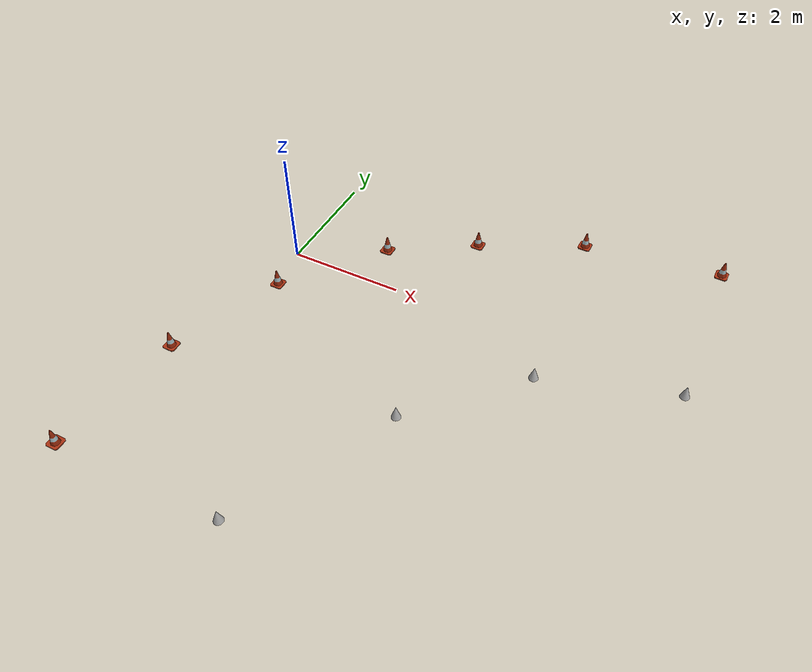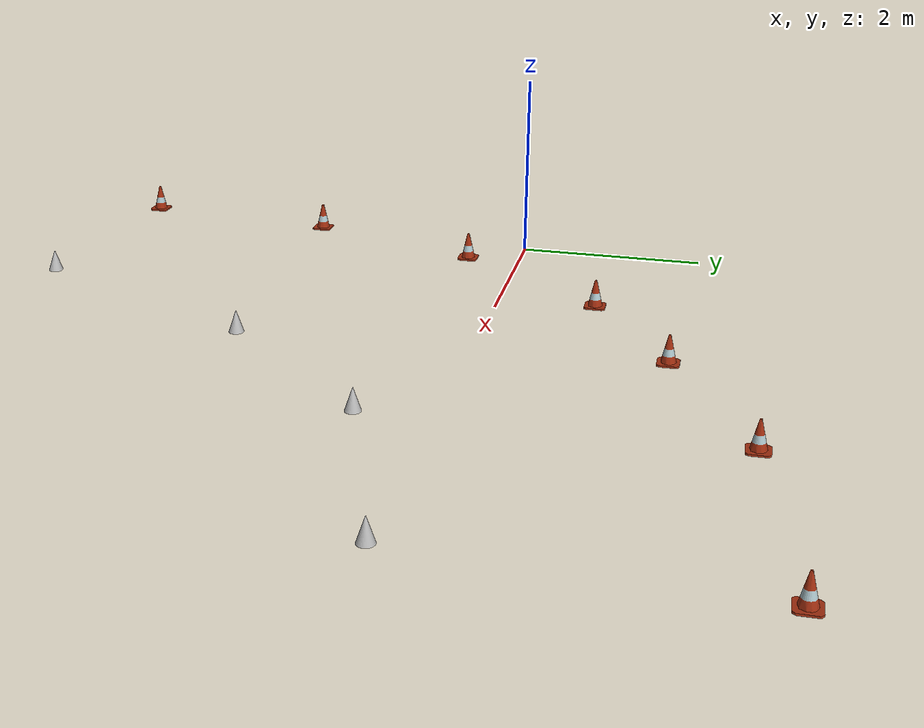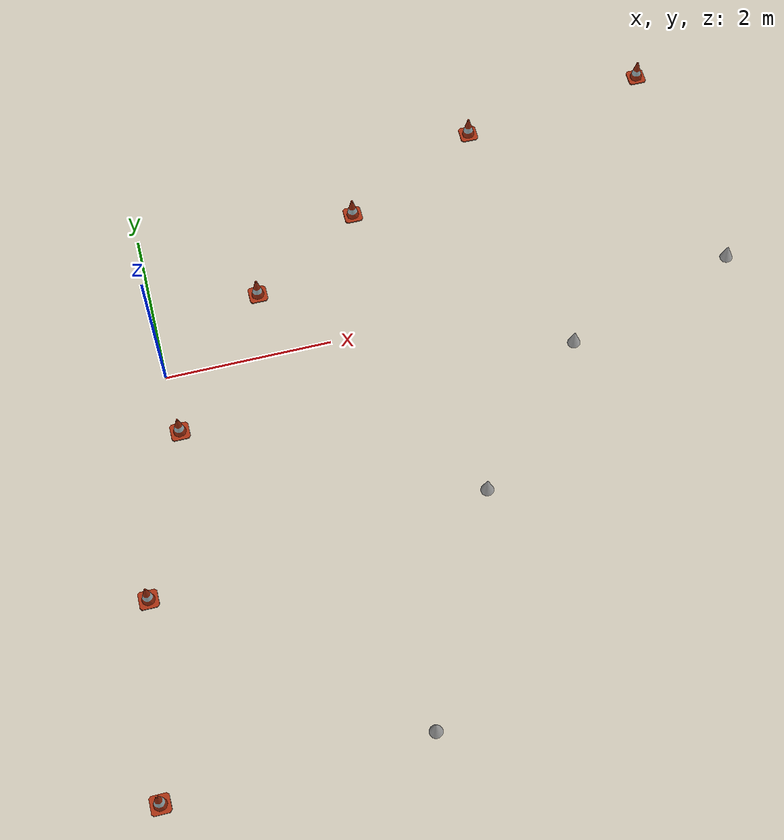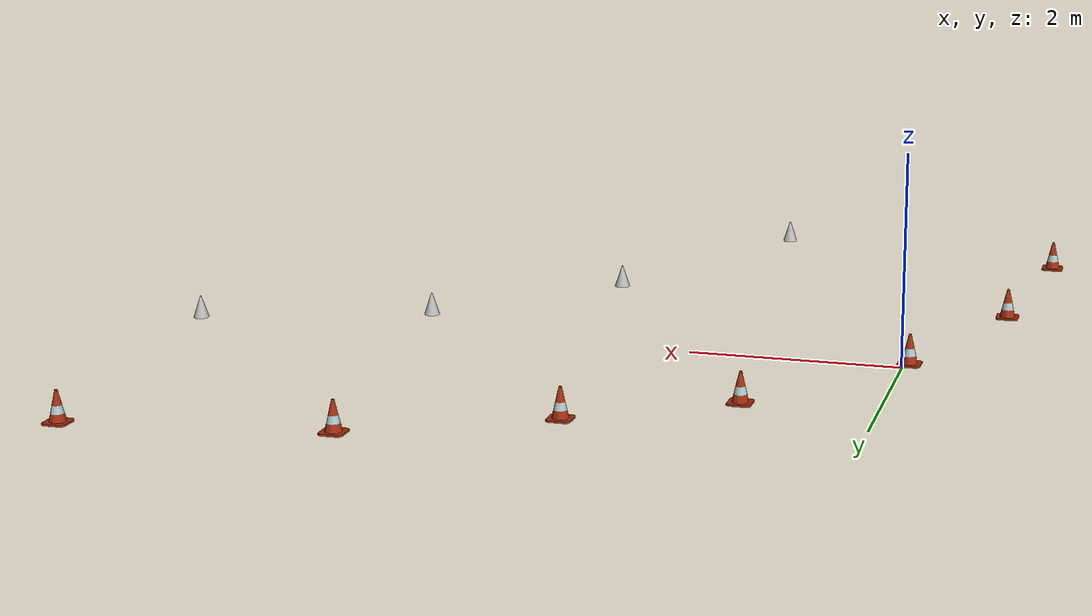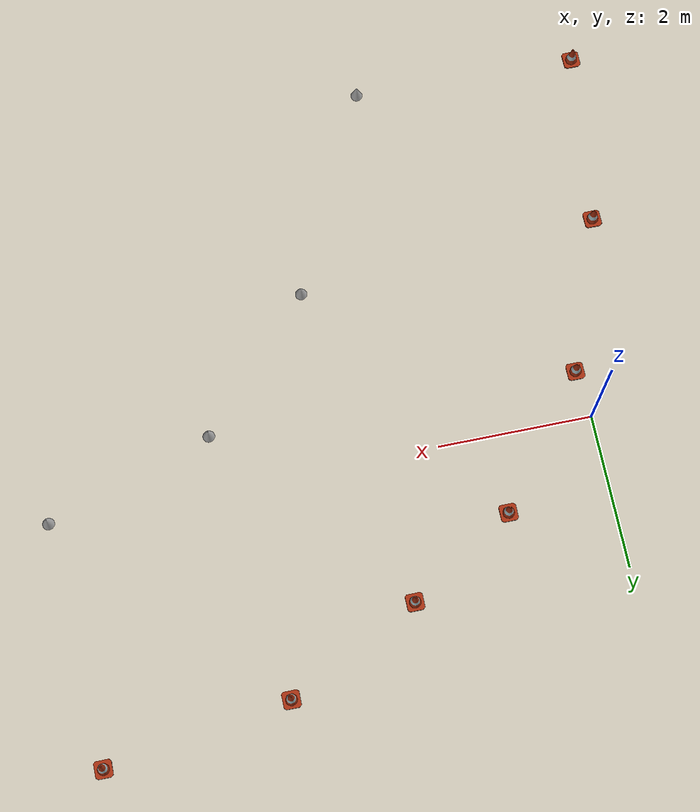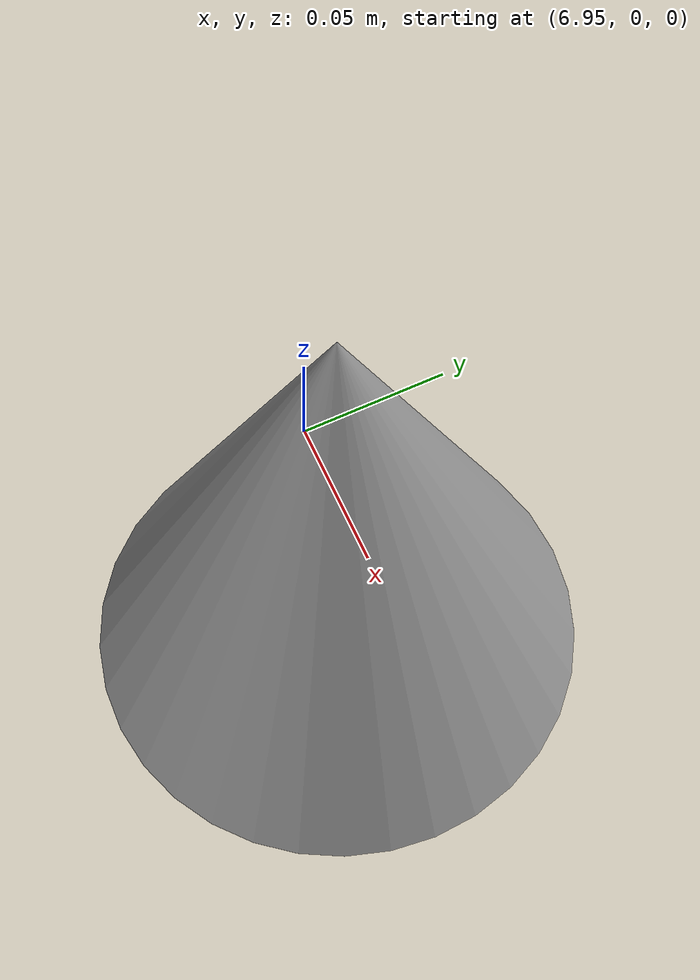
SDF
<?xml version='1.0'?>
<sdf version='1.6'>
  <model name='right_turn'>
    <model name='cone_blue_10'>
      <link name='link'>
        <collision name='collision'>
          <geometry>
            <mesh>
              <uri>model://cone_blue/meshes/cone_blue.dae</uri>
            </mesh>
          </geometry>
        </collision>
        <visual name='visual'>
          <geometry>
            <mesh>
              <uri>model://cone_blue/meshes/cone_blue.dae</uri>
            </mesh>
          </geometry>
        </visual>
      </link>
      <pose frame=''>7.02182 -0.020955 -0.001706 0 -0 0</pose>
    </model>
    <model name='cone_blue_7'>
      <link name='link'>
        <collision name='collision'>
          <geometry>
            <mesh>
              <uri>model://cone_blue/meshes/cone_blue.dae</uri>
            </mesh>
          </geometry>
        </collision>
        <visual name='visual'>
          <geometry>
            <mesh>
              <uri>model://cone_blue/meshes/cone_blue.dae</uri>
            </mesh>
          </geometry>
        </visual>
      </link>
      <pose frame=''>2.01267 -5.02095 -0.001706 0 -0 0</pose>
    </model>
    <model name='cone_blue_8'>
      <link name='link'>
        <collision name='collision'>
          <geometry>
            <mesh>
              <uri>model://cone_blue/meshes/cone_blue.dae</uri>
            </mesh>
          </geometry>
        </collision>
        <visual name='visual'>
          <geometry>
            <mesh>
              <uri>model://cone_blue/meshes/cone_blue.dae</uri>
            </mesh>
          </geometry>
        </visual>
      </link>
      <pose frame=''>3.30371 -2.38642 -0.001706 0 -0 0</pose>
    </model>
    <model name='cone_blue_9'>
      <link name='link'>
        <collision name='collision'>
          <geometry>
            <mesh>
              <uri>model://cone_blue/meshes/cone_blue.dae</uri>
            </mesh>
          </geometry>
        </collision>
        <visual name='visual'>
          <geometry>
            <mesh>
              <uri>model://cone_blue/meshes/cone_blue.dae</uri>
            </mesh>
          </geometry>
        </visual>
      </link>
      <pose frame=''>4.83695 -0.737396 -0.001706 0 -0 0</pose>
    </model>
    <model name='cone_red'>
      <link name='link'>
        <collision name='collision'>
          <geometry>
            <mesh>
              <uri>model://cone_red/meshes/cone_red.dae</uri>
            </mesh>
          </geometry>
        </collision>
        <visual name='visual'>
          <geometry>
            <mesh>
              <uri>model://cone_red/meshes/cone_red.dae</uri>
            </mesh>
          </geometry>
        </visual>
      </link>
      <pose frame=''>6.86979 3.10588 -0.001706 0 -0 0</pose>
    </model>
    <model name='cone_red_0'>
      <link name='link'>
        <collision name='collision'>
          <geometry>
            <mesh>
              <uri>model://cone_red/meshes/cone_red.dae</uri>
            </mesh>
          </geometry>
        </collision>
        <visual name='visual'>
          <geometry>
            <mesh>
              <uri>model://cone_red/meshes/cone_red.dae</uri>
            </mesh>
          </geometry>
        </visual>
      </link>
      <pose frame=''>4.45799 2.73997 -0.001706 0 -0 0</pose>
    </model>
    <model name='cone_red_1'>
      <link name='link'>
        <collision name='collision'>
          <geometry>
            <mesh>
              <uri>model://cone_red/meshes/cone_red.dae</uri>
            </mesh>
          </geometry>
        </collision>
        <visual name='visual'>
          <geometry>
            <mesh>
              <uri>model://cone_red/meshes/cone_red.dae</uri>
            </mesh>
          </geometry>
        </visual>
      </link>
      <pose frame=''>2.70546 1.86013 -0.001706 0 -0 0</pose>
    </model>
    <model name='cone_red_2'>
      <link name='link'>
        <collision name='collision'>
          <geometry>
            <mesh>
              <uri>model://cone_red/meshes/cone_red.dae</uri>
            </mesh>
          </geometry>
        </collision>
        <visual name='visual'>
          <geometry>
            <mesh>
              <uri>model://cone_red/meshes/cone_red.dae</uri>
            </mesh>
          </geometry>
        </visual>
      </link>
      <pose frame=''>1.29777 0.979045 -0.001706 0 -0 0</pose>
    </model>
    <model name='cone_red_3'>
      <link name='link'>
        <collision name='collision'>
          <geometry>
            <mesh>
              <uri>model://cone_red/meshes/cone_red.dae</uri>
            </mesh>
          </geometry>
        </collision>
        <visual name='visual'>
          <geometry>
            <mesh>
              <uri>model://cone_red/meshes/cone_red.dae</uri>
            </mesh>
          </geometry>
        </visual>
      </link>
      <pose frame=''>0.020348 -0.677548 -0.001706 0 -0 0</pose>
    </model>
    <model name='cone_red_4'>
      <link name='link'>
        <collision name='collision'>
          <geometry>
            <mesh>
              <uri>model://cone_red/meshes/cone_red.dae</uri>
            </mesh>
          </geometry>
        </collision>
        <visual name='visual'>
          <geometry>
            <mesh>
              <uri>model://cone_red/meshes/cone_red.dae</uri>
            </mesh>
          </geometry>
        </visual>
      </link>
      <pose frame=''>-0.703674 -2.69605 -0.001706 0 -0 0</pose>
    </model>
    <model name='cone_red_5'>
      <link name='link'>
        <collision name='collision'>
          <geometry>
            <mesh>
              <uri>model://cone_red/meshes/cone_red.dae</uri>
            </mesh>
          </geometry>
        </collision>
        <visual name='visual'>
          <geometry>
            <mesh>
              <uri>model://cone_red/meshes/cone_red.dae</uri>
            </mesh>
          </geometry>
        </visual>
      </link>
      <pose frame=''>-0.979653 -5.02095 -0.001706 0 -0 0</pose>
    </model>
    <static>0</static>
    <allow_auto_disable>1</allow_auto_disable>
  </model>
</sdf>
